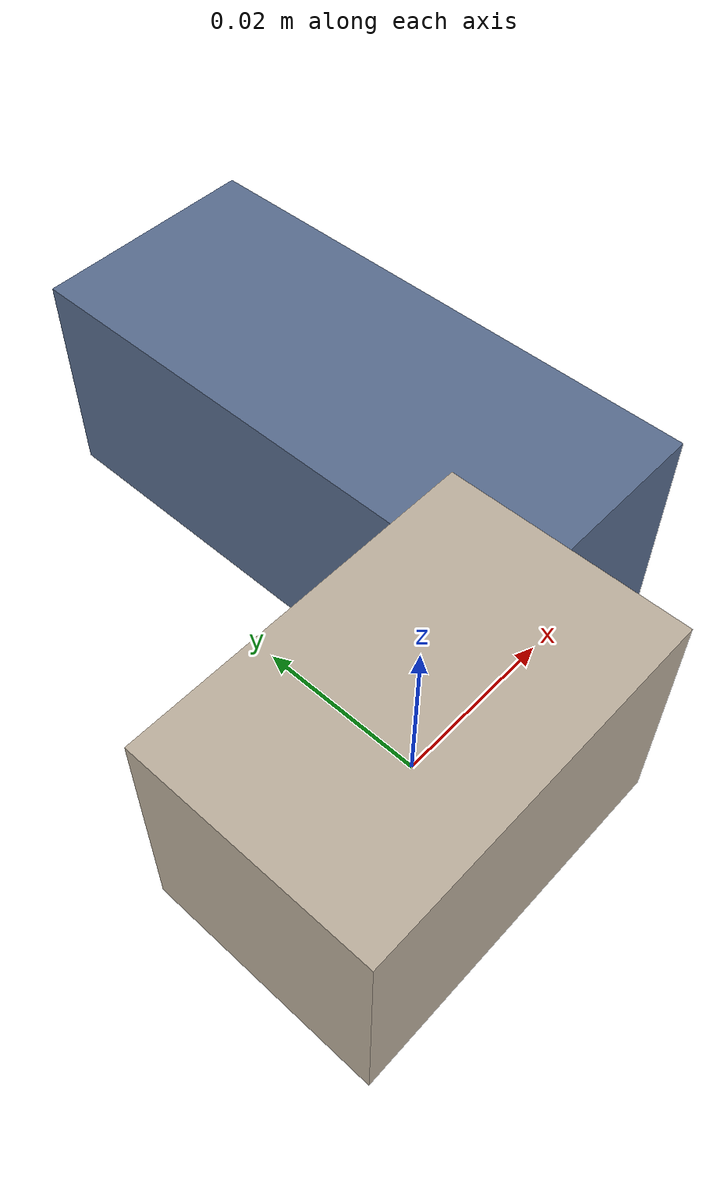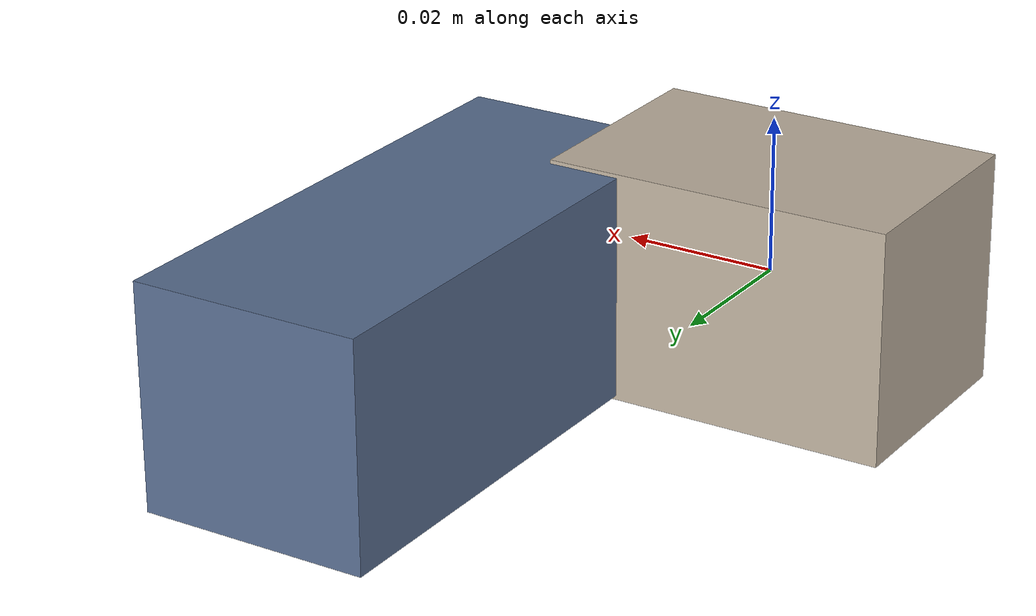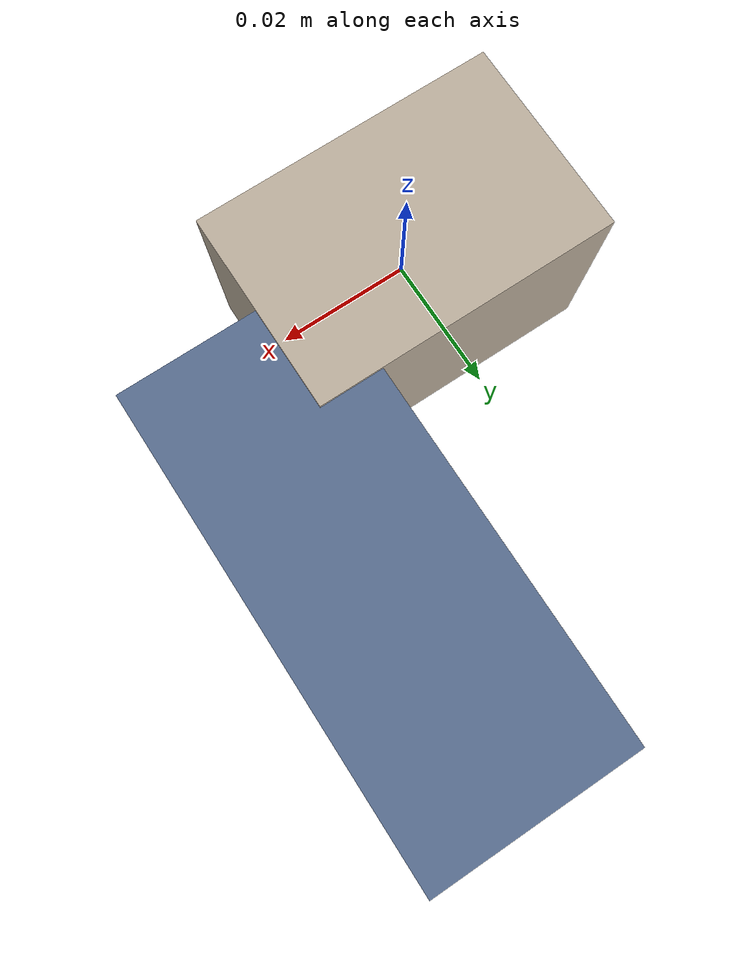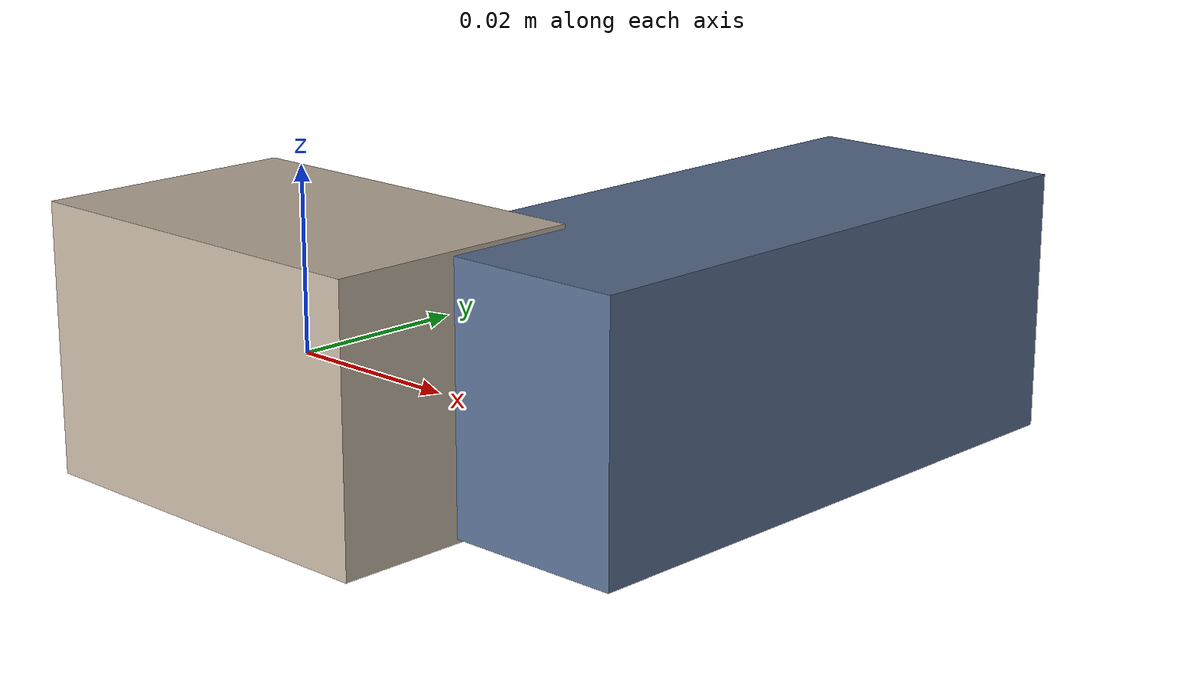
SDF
<sdf version="1.4"><world name="default"><model name="object0"><link name="link1"><pose>0 0 0 0 0 0</pose><inertial><pose>0 0 0 0 0 0</pose><mass>0.024563292919060814</mass><inertia><ixx>3.6844939378591218e-06</ixx><ixy>0</ixy><iyy>6.077613457864068e-06</iyy><ixz>0</ixz><iyz>0</iyz><izz>6.077613457864068e-06</izz></inertia></inertial><visual name="link1_visual"><pose>0 0  0 0 0 0</pose><geometry><box><size>0.045487579479742246 0.03 0.03</size></box></geometry><material><diffuse>0.7479340756027658 0.6966432941059479 0.6258331311358314 1</diffuse></material></visual><collision><pose>0 0  0 0 0 0</pose><geometry><box><size>0.045487579479742246 0.03 0.03</size></box></geometry></collision></link><link name="link2"><pose>0.0282863607665991 0.0347394752149152 0 0 0 0</pose><inertial><pose>0 0 0 0 0 0</pose><mass>0.037936005181919606</mass><inertia><ixx>1.8260888216385192e-05</ixx><ixy>0</ixy><iyy>5.503882085143503e-06</iyy><ixz>0</ixz><iyz>0</iyz><izz>1.8447406908529632e-05</izz></inertia></inertial><visual name="link2_visual"><pose>0 0  0 0 0 0</pose><geometry><box><size>0.03 0.07025186144799928 0.028999999999999998</size></box></geometry><material><diffuse>0.34868445281880495 0.4309230677791952 0.5670771021661039 1</diffuse></material></visual><collision><pose>0 0  0 0 0 0</pose><geometry><box><size>0.03 0.07025186144799928 0.028999999999999998</size></box></geometry></collision></link><joint name="link_joint_0" type="fixed"><parent>link1</parent><child>link2</child><pose>0 0 0 0 0 0</pose><axis><xyz>0 0 1</xyz></axis></joint></model></world></sdf>
